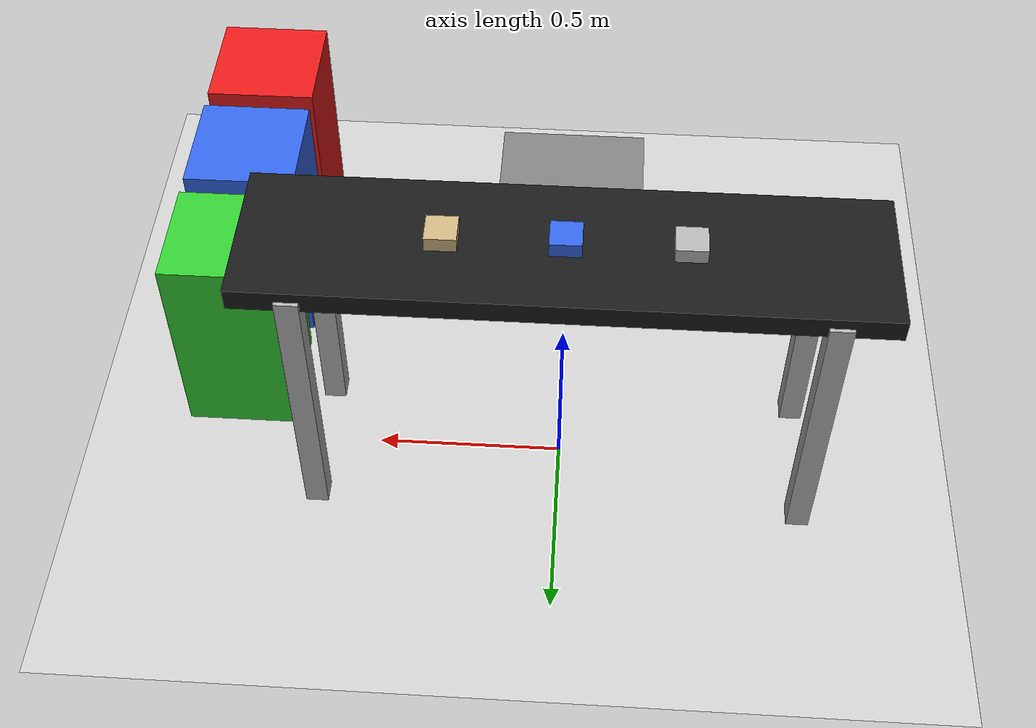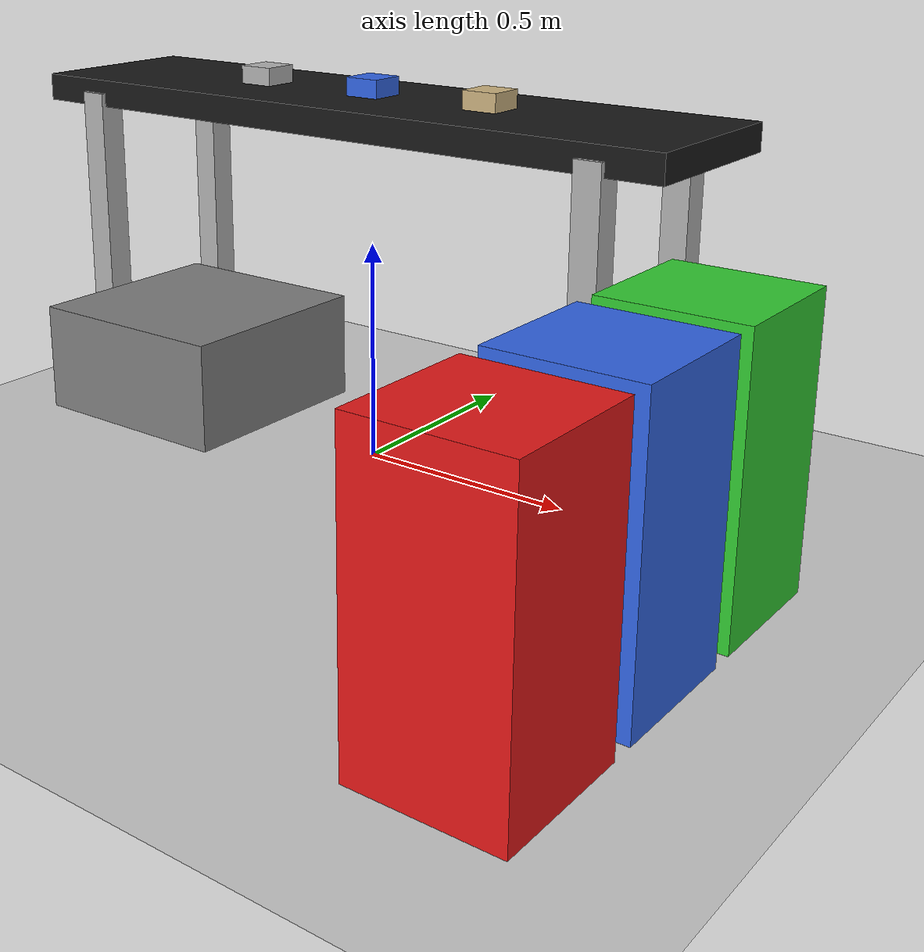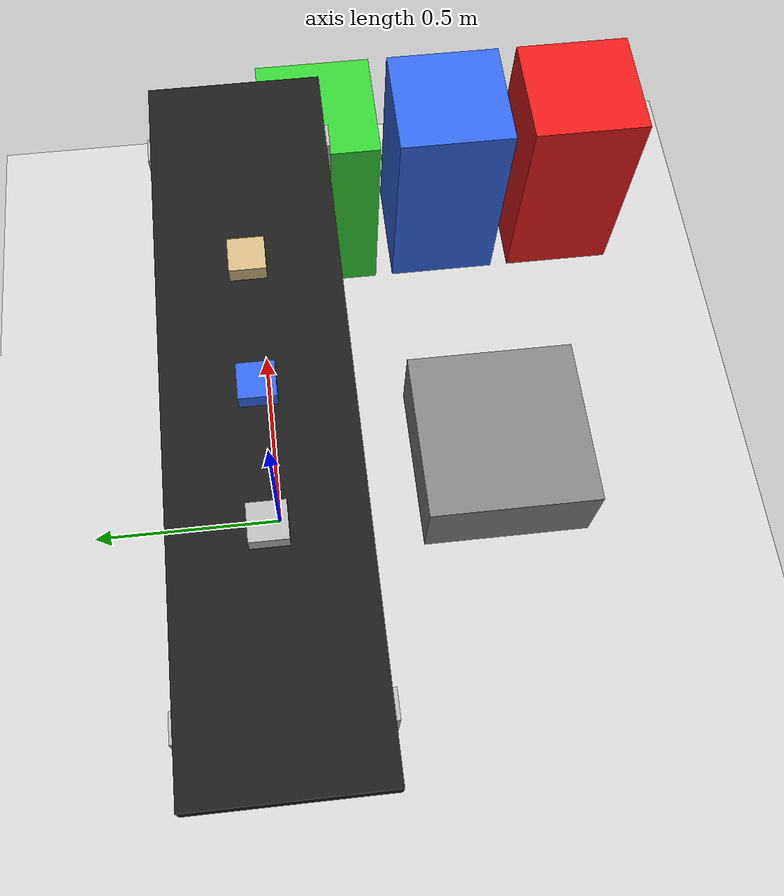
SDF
<?xml version="1.0"?>
<sdf version="1.6">
  <world name="sortibot_world">

    <!-- Ground and light -->
    <include>
      <uri>model://ground_plane</uri>
    </include>
    <include>
      <uri>model://sun</uri>
    </include>

    <!-- Conveyor belt as a table with 4 legs -->
    <model name="conveyor_belt">
      <static>true</static>
      <pose>0 0 0 0 0 0</pose>

      <!-- Belt top -->
      <link name="belt">
        <pose>0 0 0.8 0 0 0</pose>
        <visual name="belt_visual">
          <geometry>
            <box>
              <size>1.6 0.4 0.06</size>
            </box>
          </geometry>
          <material>
            <ambient>0.05 0.05 0.05 1</ambient>
            <diffuse>0.1 0.1 0.1 1</diffuse>
          </material>
        </visual>
        <collision name="belt_collision">
          <geometry>
            <box>
              <size>1.6 0.4 0.06</size>
            </box>
          </geometry>
        </collision>
      </link>

      <!-- 4 legs – light grey, fixed to belt -->

      <link name="leg_front_left">
        <pose> 0.65  0.18 0.4 0 0 0</pose>
        <visual name="leg_fl_visual">
          <geometry>
            <box>
              <size>0.06 0.06 0.8</size>
            </box>
          </geometry>
          <material>
            <diffuse>0.7 0.7 0.7 1</diffuse>
          </material>
        </visual>
        <collision name="leg_fl_collision">
          <geometry>
            <box>
              <size>0.06 0.06 0.8</size>
            </box>
          </geometry>
        </collision>
      </link>

      <link name="leg_front_right">
        <pose> 0.65 -0.18 0.4 0 0 0</pose>
        <visual name="leg_fr_visual">
          <geometry>
            <box>
              <size>0.06 0.06 0.8</size>
            </box>
          </geometry>
          <material>
            <diffuse>0.7 0.7 0.7 1</diffuse>
          </material>
        </visual>
        <collision name="leg_fr_collision">
          <geometry>
            <box>
              <size>0.06 0.06 0.8</size>
            </box>
          </geometry>
        </collision>
      </link>

      <link name="leg_back_left">
        <pose>-0.65  0.18 0.4 0 0 0</pose>
        <visual name="leg_bl_visual">
          <geometry>
            <box>
              <size>0.06 0.06 0.8</size>
            </box>
          </geometry>
          <material>
            <diffuse>0.7 0.7 0.7 1</diffuse>
          </material>
        </visual>
        <collision name="leg_bl_collision">
          <geometry>
            <box>
              <size>0.06 0.06 0.8</size>
            </box>
          </geometry>
        </collision>
      </link>

      <link name="leg_back_right">
        <pose>-0.65 -0.18 0.4 0 0 0</pose>
        <visual name="leg_br_visual">
          <geometry>
            <box>
              <size>0.06 0.06 0.8</size>
            </box>
          </geometry>
          <material>
            <diffuse>0.7 0.7 0.7 1</diffuse>
          </material>
        </visual>
        <collision name="leg_br_collision">
          <geometry>
            <box>
              <size>0.06 0.06 0.8</size>
            </box>
          </geometry>
        </collision>
      </link>

      <!-- fix joints so legs move with belt (even though model is static) -->
      <joint name="belt_leg_fl" type="fixed">
        <parent>belt</parent>
        <child>leg_front_left</child>
      </joint>
      <joint name="belt_leg_fr" type="fixed">
        <parent>belt</parent>
        <child>leg_front_right</child>
      </joint>
      <joint name="belt_leg_bl" type="fixed">
        <parent>belt</parent>
        <child>leg_back_left</child>
      </joint>
      <joint name="belt_leg_br" type="fixed">
        <parent>belt</parent>
        <child>leg_back_right</child>
      </joint>
    </model>

    <!-- ================== BINS ================== -->
    <!-- Height = 0.6 → z pose = 0.3 so they sit on ground -->
    <model name="bin_metal">
      <static>true</static>
      <pose>0.90 -0.90 0.3 0 0 0</pose>
      <link name="body">
        <collision name="col">
          <geometry>
            <box>
              <size>0.3 0.3 0.6</size>
            </box>
          </geometry>
        </collision>
        <visual name="vis">
          <geometry>
            <box>
              <size>0.3 0.3 0.6</size>
            </box>
          </geometry>
          <material>
            <!-- red-ish -->
            <ambient>0.9 0.3 0.3 1</ambient>
            <diffuse>0.9 0.1 0.1 1</diffuse>
          </material>
        </visual>
      </link>
    </model>

    <model name="bin_plastic">
      <static>true</static>
      <pose>0.90 -0.55 0.3 0 0 0</pose>
      <link name="body">
        <collision name="col">
          <geometry>
            <box>
              <size>0.3 0.3 0.6</size>
            </box>
          </geometry>
        </collision>
        <visual name="vis">
          <geometry>
            <box>
              <size>0.3 0.3 0.6</size>
            </box>
          </geometry>
          <material>
            <!-- blue -->
            <ambient>0.3 0.5 0.9 1</ambient>
            <diffuse>0.2 0.4 0.9 1</diffuse>
          </material>
        </visual>
      </link>
    </model>

    <model name="bin_paper">
      <static>true</static>
      <pose>0.90 -0.20 0.3 0 0 0</pose>
      <link name="body">
        <collision name="col">
          <geometry>
            <box>
              <size>0.3 0.3 0.6</size>
            </box>
          </geometry>
        </collision>
        <visual name="vis">
          <geometry>
            <box>
              <size>0.3 0.3 0.6</size>
            </box>
          </geometry>
          <material>
            <!-- green -->
            <ambient>0.3 0.9 0.3 1</ambient>
            <diffuse>0.2 0.8 0.2 1</diffuse>
          </material>
        </visual>
      </link>
    </model>

    <!-- Platform for the robot arm -->
    <model name="arm_platform">
      <static>true</static>
      <link name="link">
        <static>true</static>
        <pose>0.0 -0.55 0.4 0 0 0</pose>  <!-- same x,y as arm, lower z -->
        <visual name="visual">
          <geometry>
            <box>
              <size>0.4 0.4 0.2</size>
            </box>
          </geometry>
          <material>
            <ambient>0.4 0.4 0.4 1</ambient>
            <diffuse>0.5 0.5 0.5 1</diffuse>
          </material>
        </visual>
        <collision name="collision">
          <geometry>
            <box>
              <size>0.4 0.4 0.2</size>
            </box>
          </geometry>
        </collision>
      </link>
    </model>

    <!-- =============== DUMMY OBJECTS ON CONVEYOR =============== -->
    <!-- Small cubes sitting on top of the belt (z ≈ 0.83) -->
    <model name="dummy_obj_metal">
      <pose>-0.3 0 0.83 0 0 0</pose>
      <link name="link">
        <inertial>
          <mass>0.1</mass>
        </inertial>
        <visual name="vis">
          <geometry>
            <box>
              <size>0.08 0.08 0.08</size>
            </box>
          </geometry>
          <!-- grey for metal -->
          <material>
            <ambient>0.6 0.6 0.6 1</ambient>
            <diffuse>0.7 0.7 0.7 1</diffuse>
          </material>
        </visual>
        <collision name="col">
          <geometry>
            <box>
              <size>0.08 0.08 0.08</size>
            </box>
          </geometry>
        </collision>
      </link>
    </model>

    <model name="dummy_obj_plastic">
      <pose>0.0 0 0.83 0 0 0</pose>
      <link name="link">
        <inertial>
          <mass>0.1</mass>
        </inertial>
        <visual name="vis">
          <geometry>
            <box>
              <size>0.08 0.08 0.08</size>
            </box>
          </geometry>
          <!-- bright blue for plastic -->
          <material>
            <ambient>0.2 0.4 0.9 1</ambient>
            <diffuse>0.2 0.4 0.9 1</diffuse>
          </material>
        </visual>
        <collision name="col">
          <geometry>
            <box>
              <size>0.08 0.08 0.08</size>
            </box>
          </geometry>
        </collision>
      </link>
    </model>

    <model name="dummy_obj_paper">
      <pose>0.3 0 0.83 0 0 0</pose>
      <link name="link">
        <inertial>
          <mass>0.1</mass>
        </inertial>
        <visual name="vis">
          <geometry>
            <box>
              <size>0.08 0.08 0.08</size>
            </box>
          </geometry>
          <!-- light brown-ish for paper/wood mix -->
          <material>
            <ambient>0.8 0.7 0.5 1</ambient>
            <diffuse>0.8 0.7 0.5 1</diffuse>
          </material>
        </visual>
        <collision name="col">
          <geometry>
            <box>
              <size>0.08 0.08 0.08</size>
            </box>
          </geometry>
        </collision>
      </link>
    </model>

  </world>
</sdf>
